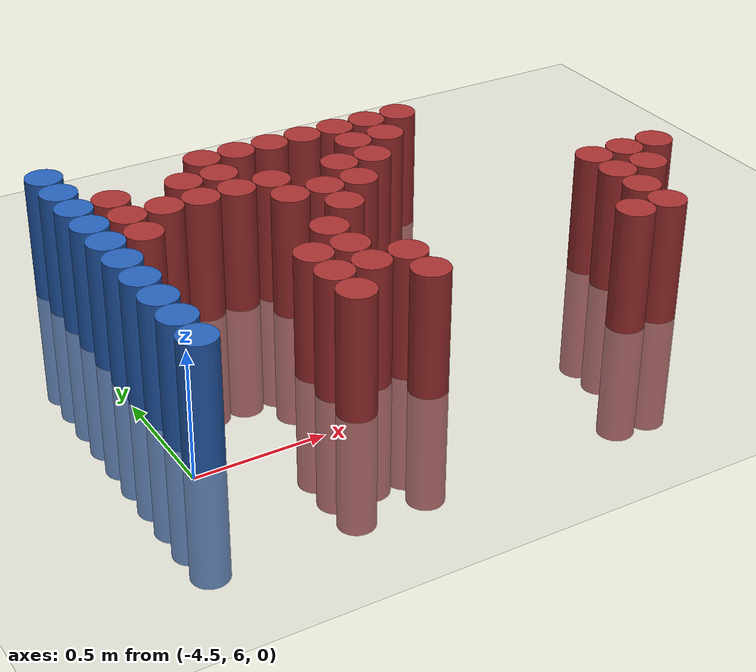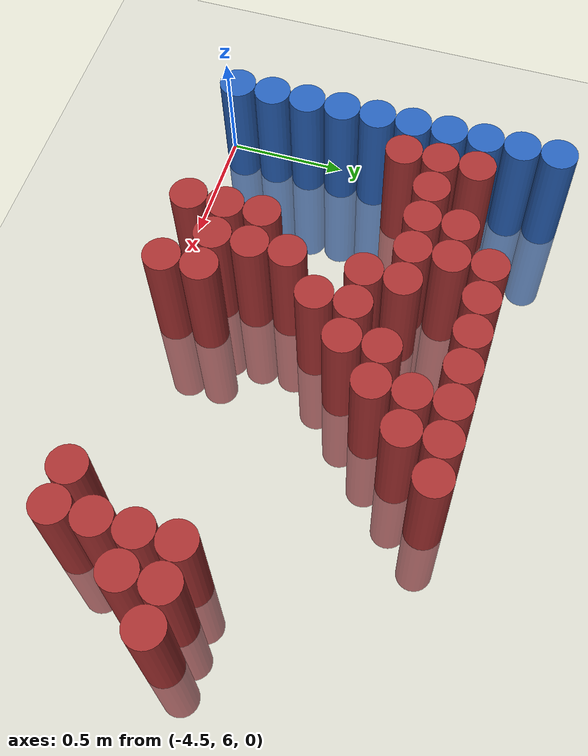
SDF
<sdf version="1.6">
 <world name="default">
  <model name="ground_plane">
   <static>1</static>
   <link name="link">
    <collision name="collision">
     <geometry><plane><normal>0 0 1</normal><size>100 100</size></plane></geometry>
     <surface><friction><ode><mu>100</mu><mu2>50</mu2></ode></friction></surface>
    </collision>
    <visual name="visual">
     <cast_shadows>0</cast_shadows>
     <geometry><plane><normal>0 0 1</normal><size>100 100</size></plane></geometry>
     <material>
      <script><uri>file://media/materials/scripts/gazebo.material</uri><name>Gazebo/Grey</name></script>
     </material>
    </visual>
   </link>
  </model>
  <model name="unit_cylinder_102">
   <static>1</static>
   <pose>-4.425000 6.075000 0.000000 0.000000 0.000000 0.000000</pose>
   <link name="link">
    <inertial>
     <mass>1</mass>
     <inertia><ixx>0.145833</ixx><ixy>0</ixy><ixz>0</ixz><iyy>0.145833</iyy><iyz>0</iyz><izz>0.125</izz></inertia>
    </inertial>
    <collision name="collision">
     <geometry><cylinder><radius>0.075000</radius><length>1</length></cylinder></geometry>
    </collision>
    <visual name="visual">
     <geometry><cylinder><radius>0.075000</radius><length>1</length></cylinder></geometry>
     <material>
      <ambient>0.152000 0.379000 0.720000 1</ambient>
      <diffuse>0.152000 0.379000 0.720000 1</diffuse>
     </material>
     <material>
      <script><name>Gazebo/Grey</name><uri>file://media/materials/scripts/gazebo.material</uri></script>
     </material>
    </visual>
   </link>
  </model>
  <model name="unit_cylinder_103">
   <static>1</static>
   <pose>-4.425000 6.225000 0.000000 0.000000 0.000000 0.000000</pose>
   <link name="link">
    <inertial>
     <mass>1</mass>
     <inertia><ixx>0.145833</ixx><ixy>0</ixy><ixz>0</ixz><iyy>0.145833</iyy><iyz>0</iyz><izz>0.125</izz></inertia>
    </inertial>
    <collision name="collision">
     <geometry><cylinder><radius>0.075000</radius><length>1</length></cylinder></geometry>
    </collision>
    <visual name="visual">
     <geometry><cylinder><radius>0.075000</radius><length>1</length></cylinder></geometry>
     <material>
      <ambient>0.152000 0.379000 0.720000 1</ambient>
      <diffuse>0.152000 0.379000 0.720000 1</diffuse>
     </material>
     <material>
      <script><name>Gazebo/Grey</name><uri>file://media/materials/scripts/gazebo.material</uri></script>
     </material>
    </visual>
   </link>
  </model>
  <model name="unit_cylinder_104">
   <static>1</static>
   <pose>-4.425000 6.375000 0.000000 0.000000 0.000000 0.000000</pose>
   <link name="link">
    <inertial>
     <mass>1</mass>
     <inertia><ixx>0.145833</ixx><ixy>0</ixy><ixz>0</ixz><iyy>0.145833</iyy><iyz>0</iyz><izz>0.125</izz></inertia>
    </inertial>
    <collision name="collision">
     <geometry><cylinder><radius>0.075000</radius><length>1</length></cylinder></geometry>
    </collision>
    <visual name="visual">
     <geometry><cylinder><radius>0.075000</radius><length>1</length></cylinder></geometry>
     <material>
      <ambient>0.152000 0.379000 0.720000 1</ambient>
      <diffuse>0.152000 0.379000 0.720000 1</diffuse>
     </material>
     <material>
      <script><name>Gazebo/Grey</name><uri>file://media/materials/scripts/gazebo.material</uri></script>
     </material>
    </visual>
   </link>
  </model>
  <model name="unit_cylinder_105">
   <static>1</static>
   <pose>-4.425000 6.525000 0.000000 0.000000 0.000000 0.000000</pose>
   <link name="link">
    <inertial>
     <mass>1</mass>
     <inertia><ixx>0.145833</ixx><ixy>0</ixy><ixz>0</ixz><iyy>0.145833</iyy><iyz>0</iyz><izz>0.125</izz></inertia>
    </inertial>
    <collision name="collision">
     <geometry><cylinder><radius>0.075000</radius><length>1</length></cylinder></geometry>
    </collision>
    <visual name="visual">
     <geometry><cylinder><radius>0.075000</radius><length>1</length></cylinder></geometry>
     <material>
      <ambient>0.152000 0.379000 0.720000 1</ambient>
      <diffuse>0.152000 0.379000 0.720000 1</diffuse>
     </material>
     <material>
      <script><name>Gazebo/Grey</name><uri>file://media/materials/scripts/gazebo.material</uri></script>
     </material>
    </visual>
   </link>
  </model>
  <model name="unit_cylinder_106">
   <static>1</static>
   <pose>-4.425000 6.675000 0.000000 0.000000 0.000000 0.000000</pose>
   <link name="link">
    <inertial>
     <mass>1</mass>
     <inertia><ixx>0.145833</ixx><ixy>0</ixy><ixz>0</ixz><iyy>0.145833</iyy><iyz>0</iyz><izz>0.125</izz></inertia>
    </inertial>
    <collision name="collision">
     <geometry><cylinder><radius>0.075000</radius><length>1</length></cylinder></geometry>
    </collision>
    <visual name="visual">
     <geometry><cylinder><radius>0.075000</radius><length>1</length></cylinder></geometry>
     <material>
      <ambient>0.152000 0.379000 0.720000 1</ambient>
      <diffuse>0.152000 0.379000 0.720000 1</diffuse>
     </material>
     <material>
      <script><name>Gazebo/Grey</name><uri>file://media/materials/scripts/gazebo.material</uri></script>
     </material>
    </visual>
   </link>
  </model>
  <model name="unit_cylinder_107">
   <static>1</static>
   <pose>-4.425000 6.825000 0.000000 0.000000 0.000000 0.000000</pose>
   <link name="link">
    <inertial>
     <mass>1</mass>
     <inertia><ixx>0.145833</ixx><ixy>0</ixy><ixz>0</ixz><iyy>0.145833</iyy><iyz>0</iyz><izz>0.125</izz></inertia>
    </inertial>
    <collision name="collision">
     <geometry><cylinder><radius>0.075000</radius><length>1</length></cylinder></geometry>
    </collision>
    <visual name="visual">
     <geometry><cylinder><radius>0.075000</radius><length>1</length></cylinder></geometry>
     <material>
      <ambient>0.152000 0.379000 0.720000 1</ambient>
      <diffuse>0.152000 0.379000 0.720000 1</diffuse>
     </material>
     <material>
      <script><name>Gazebo/Grey</name><uri>file://media/materials/scripts/gazebo.material</uri></script>
     </material>
    </visual>
   </link>
  </model>
  <model name="unit_cylinder_108">
   <static>1</static>
   <pose>-4.425000 6.975000 0.000000 0.000000 0.000000 0.000000</pose>
   <link name="link">
    <inertial>
     <mass>1</mass>
     <inertia><ixx>0.145833</ixx><ixy>0</ixy><ixz>0</ixz><iyy>0.145833</iyy><iyz>0</iyz><izz>0.125</izz></inertia>
    </inertial>
    <collision name="collision">
     <geometry><cylinder><radius>0.075000</radius><length>1</length></cylinder></geometry>
    </collision>
    <visual name="visual">
     <geometry><cylinder><radius>0.075000</radius><length>1</length></cylinder></geometry>
     <material>
      <ambient>0.152000 0.379000 0.720000 1</ambient>
      <diffuse>0.152000 0.379000 0.720000 1</diffuse>
     </material>
     <material>
      <script><name>Gazebo/Grey</name><uri>file://media/materials/scripts/gazebo.material</uri></script>
     </material>
    </visual>
   </link>
  </model>
  <model name="unit_cylinder_109">
   <static>1</static>
   <pose>-4.425000 7.125000 0.000000 0.000000 0.000000 0.000000</pose>
   <link name="link">
    <inertial>
     <mass>1</mass>
     <inertia><ixx>0.145833</ixx><ixy>0</ixy><ixz>0</ixz><iyy>0.145833</iyy><iyz>0</iyz><izz>0.125</izz></inertia>
    </inertial>
    <collision name="collision">
     <geometry><cylinder><radius>0.075000</radius><length>1</length></cylinder></geometry>
    </collision>
    <visual name="visual">
     <geometry><cylinder><radius>0.075000</radius><length>1</length></cylinder></geometry>
     <material>
      <ambient>0.152000 0.379000 0.720000 1</ambient>
      <diffuse>0.152000 0.379000 0.720000 1</diffuse>
     </material>
     <material>
      <script><name>Gazebo/Grey</name><uri>file://media/materials/scripts/gazebo.material</uri></script>
     </material>
    </visual>
   </link>
  </model>
  <model name="unit_cylinder_110">
   <static>1</static>
   <pose>-4.425000 7.275000 0.000000 0.000000 0.000000 0.000000</pose>
   <link name="link">
    <inertial>
     <mass>1</mass>
     <inertia><ixx>0.145833</ixx><ixy>0</ixy><ixz>0</ixz><iyy>0.145833</iyy><iyz>0</iyz><izz>0.125</izz></inertia>
    </inertial>
    <collision name="collision">
     <geometry><cylinder><radius>0.075000</radius><length>1</length></cylinder></geometry>
    </collision>
    <visual name="visual">
     <geometry><cylinder><radius>0.075000</radius><length>1</length></cylinder></geometry>
     <material>
      <ambient>0.152000 0.379000 0.720000 1</ambient>
      <diffuse>0.152000 0.379000 0.720000 1</diffuse>
     </material>
     <material>
      <script><name>Gazebo/Grey</name><uri>file://media/materials/scripts/gazebo.material</uri></script>
     </material>
    </visual>
   </link>
  </model>
  <model name="unit_cylinder_111">
   <static>1</static>
   <pose>-4.425000 7.425000 0.000000 0.000000 0.000000 0.000000</pose>
   <link name="link">
    <inertial>
     <mass>1</mass>
     <inertia><ixx>0.145833</ixx><ixy>0</ixy><ixz>0</ixz><iyy>0.145833</iyy><iyz>0</iyz><izz>0.125</izz></inertia>
    </inertial>
    <collision name="collision">
     <geometry><cylinder><radius>0.075000</radius><length>1</length></cylinder></geometry>
    </collision>
    <visual name="visual">
     <geometry><cylinder><radius>0.075000</radius><length>1</length></cylinder></geometry>
     <material>
      <ambient>0.152000 0.379000 0.720000 1</ambient>
      <diffuse>0.152000 0.379000 0.720000 1</diffuse>
     </material>
     <material>
      <script><name>Gazebo/Grey</name><uri>file://media/materials/scripts/gazebo.material</uri></script>
     </material>
    </visual>
   </link>
  </model>
  <model name="unit_cylinder_129">
   <static>1</static>
   <pose>-4.275000 6.825000 0.000000 0.000000 0.000000 0.000000</pose>
   <link name="link">
    <inertial>
     <mass>1</mass>
     <inertia><ixx>0.145833</ixx><ixy>0</ixy><ixz>0</ixz><iyy>0.145833</iyy><iyz>0</iyz><izz>0.125</izz></inertia>
    </inertial>
    <collision name="collision">
     <geometry><cylinder><radius>0.075000</radius><length>1</length></cylinder></geometry>
    </collision>
    <visual name="visual">
     <geometry><cylinder><radius>0.075000</radius><length>1</length></cylinder></geometry>
     <material>
      <ambient>0.648000 0.192000 0.192000 1</ambient>
      <diffuse>0.648000 0.192000 0.192000 1</diffuse>
     </material>
     <material>
      <script><name>Gazebo/Grey</name><uri>file://media/materials/scripts/gazebo.material</uri></script>
     </material>
    </visual>
   </link>
  </model>
  <model name="unit_cylinder_130">
   <static>1</static>
   <pose>-4.275000 6.975000 0.000000 0.000000 0.000000 0.000000</pose>
   <link name="link">
    <inertial>
     <mass>1</mass>
     <inertia><ixx>0.145833</ixx><ixy>0</ixy><ixz>0</ixz><iyy>0.145833</iyy><iyz>0</iyz><izz>0.125</izz></inertia>
    </inertial>
    <collision name="collision">
     <geometry><cylinder><radius>0.075000</radius><length>1</length></cylinder></geometry>
    </collision>
    <visual name="visual">
     <geometry><cylinder><radius>0.075000</radius><length>1</length></cylinder></geometry>
     <material>
      <ambient>0.648000 0.192000 0.192000 1</ambient>
      <diffuse>0.648000 0.192000 0.192000 1</diffuse>
     </material>
     <material>
      <script><name>Gazebo/Grey</name><uri>file://media/materials/scripts/gazebo.material</uri></script>
     </material>
    </visual>
   </link>
  </model>
  <model name="unit_cylinder_131">
   <static>1</static>
   <pose>-4.275000 7.125000 0.000000 0.000000 0.000000 0.000000</pose>
   <link name="link">
    <inertial>
     <mass>1</mass>
     <inertia><ixx>0.145833</ixx><ixy>0</ixy><ixz>0</ixz><iyy>0.145833</iyy><iyz>0</iyz><izz>0.125</izz></inertia>
    </inertial>
    <collision name="collision">
     <geometry><cylinder><radius>0.075000</radius><length>1</length></cylinder></geometry>
    </collision>
    <visual name="visual">
     <geometry><cylinder><radius>0.075000</radius><length>1</length></cylinder></geometry>
     <material>
      <ambient>0.648000 0.192000 0.192000 1</ambient>
      <diffuse>0.648000 0.192000 0.192000 1</diffuse>
     </material>
     <material>
      <script><name>Gazebo/Grey</name><uri>file://media/materials/scripts/gazebo.material</uri></script>
     </material>
    </visual>
   </link>
  </model>
  <model name="unit_cylinder_140">
   <static>1</static>
   <pose>-4.125000 6.975000 0.000000 0.000000 0.000000 0.000000</pose>
   <link name="link">
    <inertial>
     <mass>1</mass>
     <inertia><ixx>0.145833</ixx><ixy>0</ixy><ixz>0</ixz><iyy>0.145833</iyy><iyz>0</iyz><izz>0.125</izz></inertia>
    </inertial>
    <collision name="collision">
     <geometry><cylinder><radius>0.075000</radius><length>1</length></cylinder></geometry>
    </collision>
    <visual name="visual">
     <geometry><cylinder><radius>0.075000</radius><length>1</length></cylinder></geometry>
     <material>
      <ambient>0.648000 0.192000 0.192000 1</ambient>
      <diffuse>0.648000 0.192000 0.192000 1</diffuse>
     </material>
     <material>
      <script><name>Gazebo/Grey</name><uri>file://media/materials/scripts/gazebo.material</uri></script>
     </material>
    </visual>
   </link>
  </model>
  <model name="unit_cylinder_144">
   <static>1</static>
   <pose>-3.975000 6.975000 0.000000 0.000000 0.000000 0.000000</pose>
   <link name="link">
    <inertial>
     <mass>1</mass>
     <inertia><ixx>0.145833</ixx><ixy>0</ixy><ixz>0</ixz><iyy>0.145833</iyy><iyz>0</iyz><izz>0.125</izz></inertia>
    </inertial>
    <collision name="collision">
     <geometry><cylinder><radius>0.075000</radius><length>1</length></cylinder></geometry>
    </collision>
    <visual name="visual">
     <geometry><cylinder><radius>0.075000</radius><length>1</length></cylinder></geometry>
     <material>
      <ambient>0.648000 0.192000 0.192000 1</ambient>
      <diffuse>0.648000 0.192000 0.192000 1</diffuse>
     </material>
     <material>
      <script><name>Gazebo/Grey</name><uri>file://media/materials/scripts/gazebo.material</uri></script>
     </material>
    </visual>
   </link>
  </model>
  <model name="unit_cylinder_145">
   <static>1</static>
   <pose>-3.975000 7.125000 0.000000 0.000000 0.000000 0.000000</pose>
   <link name="link">
    <inertial>
     <mass>1</mass>
     <inertia><ixx>0.145833</ixx><ixy>0</ixy><ixz>0</ixz><iyy>0.145833</iyy><iyz>0</iyz><izz>0.125</izz></inertia>
    </inertial>
    <collision name="collision">
     <geometry><cylinder><radius>0.075000</radius><length>1</length></cylinder></geometry>
    </collision>
    <visual name="visual">
     <geometry><cylinder><radius>0.075000</radius><length>1</length></cylinder></geometry>
     <material>
      <ambient>0.648000 0.192000 0.192000 1</ambient>
      <diffuse>0.648000 0.192000 0.192000 1</diffuse>
     </material>
     <material>
      <script><name>Gazebo/Grey</name><uri>file://media/materials/scripts/gazebo.material</uri></script>
     </material>
    </visual>
   </link>
  </model>
  <model name="unit_cylinder_149">
   <static>1</static>
   <pose>-3.825000 6.075000 0.000000 0.000000 0.000000 0.000000</pose>
   <link name="link">
    <inertial>
     <mass>1</mass>
     <inertia><ixx>0.145833</ixx><ixy>0</ixy><ixz>0</ixz><iyy>0.145833</iyy><iyz>0</iyz><izz>0.125</izz></inertia>
    </inertial>
    <collision name="collision">
     <geometry><cylinder><radius>0.075000</radius><length>1</length></cylinder></geometry>
    </collision>
    <visual name="visual">
     <geometry><cylinder><radius>0.075000</radius><length>1</length></cylinder></geometry>
     <material>
      <ambient>0.648000 0.192000 0.192000 1</ambient>
      <diffuse>0.648000 0.192000 0.192000 1</diffuse>
     </material>
     <material>
      <script><name>Gazebo/Grey</name><uri>file://media/materials/scripts/gazebo.material</uri></script>
     </material>
    </visual>
   </link>
  </model>
  <model name="unit_cylinder_150">
   <static>1</static>
   <pose>-3.825000 6.225000 0.000000 0.000000 0.000000 0.000000</pose>
   <link name="link">
    <inertial>
     <mass>1</mass>
     <inertia><ixx>0.145833</ixx><ixy>0</ixy><ixz>0</ixz><iyy>0.145833</iyy><iyz>0</iyz><izz>0.125</izz></inertia>
    </inertial>
    <collision name="collision">
     <geometry><cylinder><radius>0.075000</radius><length>1</length></cylinder></geometry>
    </collision>
    <visual name="visual">
     <geometry><cylinder><radius>0.075000</radius><length>1</length></cylinder></geometry>
     <material>
      <ambient>0.648000 0.192000 0.192000 1</ambient>
      <diffuse>0.648000 0.192000 0.192000 1</diffuse>
     </material>
     <material>
      <script><name>Gazebo/Grey</name><uri>file://media/materials/scripts/gazebo.material</uri></script>
     </material>
    </visual>
   </link>
  </model>
  <model name="unit_cylinder_151">
   <static>1</static>
   <pose>-3.825000 6.375000 0.000000 0.000000 0.000000 0.000000</pose>
   <link name="link">
    <inertial>
     <mass>1</mass>
     <inertia><ixx>0.145833</ixx><ixy>0</ixy><ixz>0</ixz><iyy>0.145833</iyy><iyz>0</iyz><izz>0.125</izz></inertia>
    </inertial>
    <collision name="collision">
     <geometry><cylinder><radius>0.075000</radius><length>1</length></cylinder></geometry>
    </collision>
    <visual name="visual">
     <geometry><cylinder><radius>0.075000</radius><length>1</length></cylinder></geometry>
     <material>
      <ambient>0.648000 0.192000 0.192000 1</ambient>
      <diffuse>0.648000 0.192000 0.192000 1</diffuse>
     </material>
     <material>
      <script><name>Gazebo/Grey</name><uri>file://media/materials/scripts/gazebo.material</uri></script>
     </material>
    </visual>
   </link>
  </model>
  <model name="unit_cylinder_152">
   <static>1</static>
   <pose>-3.825000 6.975000 0.000000 0.000000 0.000000 0.000000</pose>
   <link name="link">
    <inertial>
     <mass>1</mass>
     <inertia><ixx>0.145833</ixx><ixy>0</ixy><ixz>0</ixz><iyy>0.145833</iyy><iyz>0</iyz><izz>0.125</izz></inertia>
    </inertial>
    <collision name="collision">
     <geometry><cylinder><radius>0.075000</radius><length>1</length></cylinder></geometry>
    </collision>
    <visual name="visual">
     <geometry><cylinder><radius>0.075000</radius><length>1</length></cylinder></geometry>
     <material>
      <ambient>0.648000 0.192000 0.192000 1</ambient>
      <diffuse>0.648000 0.192000 0.192000 1</diffuse>
     </material>
     <material>
      <script><name>Gazebo/Grey</name><uri>file://media/materials/scripts/gazebo.material</uri></script>
     </material>
    </visual>
   </link>
  </model>
  <model name="unit_cylinder_153">
   <static>1</static>
   <pose>-3.825000 7.125000 0.000000 0.000000 0.000000 0.000000</pose>
   <link name="link">
    <inertial>
     <mass>1</mass>
     <inertia><ixx>0.145833</ixx><ixy>0</ixy><ixz>0</ixz><iyy>0.145833</iyy><iyz>0</iyz><izz>0.125</izz></inertia>
    </inertial>
    <collision name="collision">
     <geometry><cylinder><radius>0.075000</radius><length>1</length></cylinder></geometry>
    </collision>
    <visual name="visual">
     <geometry><cylinder><radius>0.075000</radius><length>1</length></cylinder></geometry>
     <material>
      <ambient>0.648000 0.192000 0.192000 1</ambient>
      <diffuse>0.648000 0.192000 0.192000 1</diffuse>
     </material>
     <material>
      <script><name>Gazebo/Grey</name><uri>file://media/materials/scripts/gazebo.material</uri></script>
     </material>
    </visual>
   </link>
  </model>
  <model name="unit_cylinder_154">
   <static>1</static>
   <pose>-3.825000 7.275000 0.000000 0.000000 0.000000 0.000000</pose>
   <link name="link">
    <inertial>
     <mass>1</mass>
     <inertia><ixx>0.145833</ixx><ixy>0</ixy><ixz>0</ixz><iyy>0.145833</iyy><iyz>0</iyz><izz>0.125</izz></inertia>
    </inertial>
    <collision name="collision">
     <geometry><cylinder><radius>0.075000</radius><length>1</length></cylinder></geometry>
    </collision>
    <visual name="visual">
     <geometry><cylinder><radius>0.075000</radius><length>1</length></cylinder></geometry>
     <material>
      <ambient>0.648000 0.192000 0.192000 1</ambient>
      <diffuse>0.648000 0.192000 0.192000 1</diffuse>
     </material>
     <material>
      <script><name>Gazebo/Grey</name><uri>file://media/materials/scripts/gazebo.material</uri></script>
     </material>
    </visual>
   </link>
  </model>
  <model name="unit_cylinder_156">
   <static>1</static>
   <pose>-3.675000 6.225000 0.000000 0.000000 0.000000 0.000000</pose>
   <link name="link">
    <inertial>
     <mass>1</mass>
     <inertia><ixx>0.145833</ixx><ixy>0</ixy><ixz>0</ixz><iyy>0.145833</iyy><iyz>0</iyz><izz>0.125</izz></inertia>
    </inertial>
    <collision name="collision">
     <geometry><cylinder><radius>0.075000</radius><length>1</length></cylinder></geometry>
    </collision>
    <visual name="visual">
     <geometry><cylinder><radius>0.075000</radius><length>1</length></cylinder></geometry>
     <material>
      <ambient>0.648000 0.192000 0.192000 1</ambient>
      <diffuse>0.648000 0.192000 0.192000 1</diffuse>
     </material>
     <material>
      <script><name>Gazebo/Grey</name><uri>file://media/materials/scripts/gazebo.material</uri></script>
     </material>
    </visual>
   </link>
  </model>
  <model name="unit_cylinder_157">
   <static>1</static>
   <pose>-3.675000 6.375000 0.000000 0.000000 0.000000 0.000000</pose>
   <link name="link">
    <inertial>
     <mass>1</mass>
     <inertia><ixx>0.145833</ixx><ixy>0</ixy><ixz>0</ixz><iyy>0.145833</iyy><iyz>0</iyz><izz>0.125</izz></inertia>
    </inertial>
    <collision name="collision">
     <geometry><cylinder><radius>0.075000</radius><length>1</length></cylinder></geometry>
    </collision>
    <visual name="visual">
     <geometry><cylinder><radius>0.075000</radius><length>1</length></cylinder></geometry>
     <material>
      <ambient>0.648000 0.192000 0.192000 1</ambient>
      <diffuse>0.648000 0.192000 0.192000 1</diffuse>
     </material>
     <material>
      <script><name>Gazebo/Grey</name><uri>file://media/materials/scripts/gazebo.material</uri></script>
     </material>
    </visual>
   </link>
  </model>
  <model name="unit_cylinder_158">
   <static>1</static>
   <pose>-3.675000 6.525000 0.000000 0.000000 0.000000 0.000000</pose>
   <link name="link">
    <inertial>
     <mass>1</mass>
     <inertia><ixx>0.145833</ixx><ixy>0</ixy><ixz>0</ixz><iyy>0.145833</iyy><iyz>0</iyz><izz>0.125</izz></inertia>
    </inertial>
    <collision name="collision">
     <geometry><cylinder><radius>0.075000</radius><length>1</length></cylinder></geometry>
    </collision>
    <visual name="visual">
     <geometry><cylinder><radius>0.075000</radius><length>1</length></cylinder></geometry>
     <material>
      <ambient>0.648000 0.192000 0.192000 1</ambient>
      <diffuse>0.648000 0.192000 0.192000 1</diffuse>
     </material>
     <material>
      <script><name>Gazebo/Grey</name><uri>file://media/materials/scripts/gazebo.material</uri></script>
     </material>
    </visual>
   </link>
  </model>
  <model name="unit_cylinder_159">
   <static>1</static>
   <pose>-3.675000 6.825000 0.000000 0.000000 0.000000 0.000000</pose>
   <link name="link">
    <inertial>
     <mass>1</mass>
     <inertia><ixx>0.145833</ixx><ixy>0</ixy><ixz>0</ixz><iyy>0.145833</iyy><iyz>0</iyz><izz>0.125</izz></inertia>
    </inertial>
    <collision name="collision">
     <geometry><cylinder><radius>0.075000</radius><length>1</length></cylinder></geometry>
    </collision>
    <visual name="visual">
     <geometry><cylinder><radius>0.075000</radius><length>1</length></cylinder></geometry>
     <material>
      <ambient>0.648000 0.192000 0.192000 1</ambient>
      <diffuse>0.648000 0.192000 0.192000 1</diffuse>
     </material>
     <material>
      <script><name>Gazebo/Grey</name><uri>file://media/materials/scripts/gazebo.material</uri></script>
     </material>
    </visual>
   </link>
  </model>
  <model name="unit_cylinder_160">
   <static>1</static>
   <pose>-3.675000 6.975000 0.000000 0.000000 0.000000 0.000000</pose>
   <link name="link">
    <inertial>
     <mass>1</mass>
     <inertia><ixx>0.145833</ixx><ixy>0</ixy><ixz>0</ixz><iyy>0.145833</iyy><iyz>0</iyz><izz>0.125</izz></inertia>
    </inertial>
    <collision name="collision">
     <geometry><cylinder><radius>0.075000</radius><length>1</length></cylinder></geometry>
    </collision>
    <visual name="visual">
     <geometry><cylinder><radius>0.075000</radius><length>1</length></cylinder></geometry>
     <material>
      <ambient>0.648000 0.192000 0.192000 1</ambient>
      <diffuse>0.648000 0.192000 0.192000 1</diffuse>
     </material>
     <material>
      <script><name>Gazebo/Grey</name><uri>file://media/materials/scripts/gazebo.material</uri></script>
     </material>
    </visual>
   </link>
  </model>
  <model name="unit_cylinder_161">
   <static>1</static>
   <pose>-3.675000 7.275000 0.000000 0.000000 0.000000 0.000000</pose>
   <link name="link">
    <inertial>
     <mass>1</mass>
     <inertia><ixx>0.145833</ixx><ixy>0</ixy><ixz>0</ixz><iyy>0.145833</iyy><iyz>0</iyz><izz>0.125</izz></inertia>
    </inertial>
    <collision name="collision">
     <geometry><cylinder><radius>0.075000</radius><length>1</length></cylinder></geometry>
    </collision>
    <visual name="visual">
     <geometry><cylinder><radius>0.075000</radius><length>1</length></cylinder></geometry>
     <material>
      <ambient>0.648000 0.192000 0.192000 1</ambient>
      <diffuse>0.648000 0.192000 0.192000 1</diffuse>
     </material>
     <material>
      <script><name>Gazebo/Grey</name><uri>file://media/materials/scripts/gazebo.material</uri></script>
     </material>
    </visual>
   </link>
  </model>
  <model name="unit_cylinder_165">
   <static>1</static>
   <pose>-3.525000 6.075000 0.000000 0.000000 0.000000 0.000000</pose>
   <link name="link">
    <inertial>
     <mass>1</mass>
     <inertia><ixx>0.145833</ixx><ixy>0</ixy><ixz>0</ixz><iyy>0.145833</iyy><iyz>0</iyz><izz>0.125</izz></inertia>
    </inertial>
    <collision name="collision">
     <geometry><cylinder><radius>0.075000</radius><length>1</length></cylinder></geometry>
    </collision>
    <visual name="visual">
     <geometry><cylinder><radius>0.075000</radius><length>1</length></cylinder></geometry>
     <material>
      <ambient>0.648000 0.192000 0.192000 1</ambient>
      <diffuse>0.648000 0.192000 0.192000 1</diffuse>
     </material>
     <material>
      <script><name>Gazebo/Grey</name><uri>file://media/materials/scripts/gazebo.material</uri></script>
     </material>
    </visual>
   </link>
  </model>
  <model name="unit_cylinder_166">
   <static>1</static>
   <pose>-3.525000 6.225000 0.000000 0.000000 0.000000 0.000000</pose>
   <link name="link">
    <inertial>
     <mass>1</mass>
     <inertia><ixx>0.145833</ixx><ixy>0</ixy><ixz>0</ixz><iyy>0.145833</iyy><iyz>0</iyz><izz>0.125</izz></inertia>
    </inertial>
    <collision name="collision">
     <geometry><cylinder><radius>0.075000</radius><length>1</length></cylinder></geometry>
    </collision>
    <visual name="visual">
     <geometry><cylinder><radius>0.075000</radius><length>1</length></cylinder></geometry>
     <material>
      <ambient>0.648000 0.192000 0.192000 1</ambient>
      <diffuse>0.648000 0.192000 0.192000 1</diffuse>
     </material>
     <material>
      <script><name>Gazebo/Grey</name><uri>file://media/materials/scripts/gazebo.material</uri></script>
     </material>
    </visual>
   </link>
  </model>
  <model name="unit_cylinder_167">
   <static>1</static>
   <pose>-3.525000 6.675000 0.000000 0.000000 0.000000 0.000000</pose>
   <link name="link">
    <inertial>
     <mass>1</mass>
     <inertia><ixx>0.145833</ixx><ixy>0</ixy><ixz>0</ixz><iyy>0.145833</iyy><iyz>0</iyz><izz>0.125</izz></inertia>
    </inertial>
    <collision name="collision">
     <geometry><cylinder><radius>0.075000</radius><length>1</length></cylinder></geometry>
    </collision>
    <visual name="visual">
     <geometry><cylinder><radius>0.075000</radius><length>1</length></cylinder></geometry>
     <material>
      <ambient>0.648000 0.192000 0.192000 1</ambient>
      <diffuse>0.648000 0.192000 0.192000 1</diffuse>
     </material>
     <material>
      <script><name>Gazebo/Grey</name><uri>file://media/materials/scripts/gazebo.material</uri></script>
     </material>
    </visual>
   </link>
  </model>
  <model name="unit_cylinder_168">
   <static>1</static>
   <pose>-3.525000 6.825000 0.000000 0.000000 0.000000 0.000000</pose>
   <link name="link">
    <inertial>
     <mass>1</mass>
     <inertia><ixx>0.145833</ixx><ixy>0</ixy><ixz>0</ixz><iyy>0.145833</iyy><iyz>0</iyz><izz>0.125</izz></inertia>
    </inertial>
    <collision name="collision">
     <geometry><cylinder><radius>0.075000</radius><length>1</length></cylinder></geometry>
    </collision>
    <visual name="visual">
     <geometry><cylinder><radius>0.075000</radius><length>1</length></cylinder></geometry>
     <material>
      <ambient>0.648000 0.192000 0.192000 1</ambient>
      <diffuse>0.648000 0.192000 0.192000 1</diffuse>
     </material>
     <material>
      <script><name>Gazebo/Grey</name><uri>file://media/materials/scripts/gazebo.material</uri></script>
     </material>
    </visual>
   </link>
  </model>
  <model name="unit_cylinder_169">
   <static>1</static>
   <pose>-3.525000 7.275000 0.000000 0.000000 0.000000 0.000000</pose>
   <link name="link">
    <inertial>
     <mass>1</mass>
     <inertia><ixx>0.145833</ixx><ixy>0</ixy><ixz>0</ixz><iyy>0.145833</iyy><iyz>0</iyz><izz>0.125</izz></inertia>
    </inertial>
    <collision name="collision">
     <geometry><cylinder><radius>0.075000</radius><length>1</length></cylinder></geometry>
    </collision>
    <visual name="visual">
     <geometry><cylinder><radius>0.075000</radius><length>1</length></cylinder></geometry>
     <material>
      <ambient>0.648000 0.192000 0.192000 1</ambient>
      <diffuse>0.648000 0.192000 0.192000 1</diffuse>
     </material>
     <material>
      <script><name>Gazebo/Grey</name><uri>file://media/materials/scripts/gazebo.material</uri></script>
     </material>
    </visual>
   </link>
  </model>
  <model name="unit_cylinder_173">
   <static>1</static>
   <pose>-3.375000 6.825000 0.000000 0.000000 0.000000 0.000000</pose>
   <link name="link">
    <inertial>
     <mass>1</mass>
     <inertia><ixx>0.145833</ixx><ixy>0</ixy><ixz>0</ixz><iyy>0.145833</iyy><iyz>0</iyz><izz>0.125</izz></inertia>
    </inertial>
    <collision name="collision">
     <geometry><cylinder><radius>0.075000</radius><length>1</length></cylinder></geometry>
    </collision>
    <visual name="visual">
     <geometry><cylinder><radius>0.075000</radius><length>1</length></cylinder></geometry>
     <material>
      <ambient>0.648000 0.192000 0.192000 1</ambient>
      <diffuse>0.648000 0.192000 0.192000 1</diffuse>
     </material>
     <material>
      <script><name>Gazebo/Grey</name><uri>file://media/materials/scripts/gazebo.material</uri></script>
     </material>
    </visual>
   </link>
  </model>
  <model name="unit_cylinder_174">
   <static>1</static>
   <pose>-3.375000 6.975000 0.000000 0.000000 0.000000 0.000000</pose>
   <link name="link">
    <inertial>
     <mass>1</mass>
     <inertia><ixx>0.145833</ixx><ixy>0</ixy><ixz>0</ixz><iyy>0.145833</iyy><iyz>0</iyz><izz>0.125</izz></inertia>
    </inertial>
    <collision name="collision">
     <geometry><cylinder><radius>0.075000</radius><length>1</length></cylinder></geometry>
    </collision>
    <visual name="visual">
     <geometry><cylinder><radius>0.075000</radius><length>1</length></cylinder></geometry>
     <material>
      <ambient>0.648000 0.192000 0.192000 1</ambient>
      <diffuse>0.648000 0.192000 0.192000 1</diffuse>
     </material>
     <material>
      <script><name>Gazebo/Grey</name><uri>file://media/materials/scripts/gazebo.material</uri></script>
     </material>
    </visual>
   </link>
  </model>
  <model name="unit_cylinder_175">
   <static>1</static>
   <pose>-3.375000 7.275000 0.000000 0.000000 0.000000 0.000000</pose>
   <link name="link">
    <inertial>
     <mass>1</mass>
     <inertia><ixx>0.145833</ixx><ixy>0</ixy><ixz>0</ixz><iyy>0.145833</iyy><iyz>0</iyz><izz>0.125</izz></inertia>
    </inertial>
    <collision name="collision">
     <geometry><cylinder><radius>0.075000</radius><length>1</length></cylinder></geometry>
    </collision>
    <visual name="visual">
     <geometry><cylinder><radius>0.075000</radius><length>1</length></cylinder></geometry>
     <material>
      <ambient>0.648000 0.192000 0.192000 1</ambient>
      <diffuse>0.648000 0.192000 0.192000 1</diffuse>
     </material>
     <material>
      <script><name>Gazebo/Grey</name><uri>file://media/materials/scripts/gazebo.material</uri></script>
     </material>
    </visual>
   </link>
  </model>
  <model name="unit_cylinder_178">
   <static>1</static>
   <pose>-3.225000 6.975000 0.000000 0.000000 0.000000 0.000000</pose>
   <link name="link">
    <inertial>
     <mass>1</mass>
     <inertia><ixx>0.145833</ixx><ixy>0</ixy><ixz>0</ixz><iyy>0.145833</iyy><iyz>0</iyz><izz>0.125</izz></inertia>
    </inertial>
    <collision name="collision">
     <geometry><cylinder><radius>0.075000</radius><length>1</length></cylinder></geometry>
    </collision>
    <visual name="visual">
     <geometry><cylinder><radius>0.075000</radius><length>1</length></cylinder></geometry>
     <material>
      <ambient>0.648000 0.192000 0.192000 1</ambient>
      <diffuse>0.648000 0.192000 0.192000 1</diffuse>
     </material>
     <material>
      <script><name>Gazebo/Grey</name><uri>file://media/materials/scripts/gazebo.material</uri></script>
     </material>
    </visual>
   </link>
  </model>
  <model name="unit_cylinder_179">
   <static>1</static>
   <pose>-3.225000 7.125000 0.000000 0.000000 0.000000 0.000000</pose>
   <link name="link">
    <inertial>
     <mass>1</mass>
     <inertia><ixx>0.145833</ixx><ixy>0</ixy><ixz>0</ixz><iyy>0.145833</iyy><iyz>0</iyz><izz>0.125</izz></inertia>
    </inertial>
    <collision name="collision">
     <geometry><cylinder><radius>0.075000</radius><length>1</length></cylinder></geometry>
    </collision>
    <visual name="visual">
     <geometry><cylinder><radius>0.075000</radius><length>1</length></cylinder></geometry>
     <material>
      <ambient>0.648000 0.192000 0.192000 1</ambient>
      <diffuse>0.648000 0.192000 0.192000 1</diffuse>
     </material>
     <material>
      <script><name>Gazebo/Grey</name><uri>file://media/materials/scripts/gazebo.material</uri></script>
     </material>
    </visual>
   </link>
  </model>
  <model name="unit_cylinder_180">
   <static>1</static>
   <pose>-3.225000 7.275000 0.000000 0.000000 0.000000 0.000000</pose>
   <link name="link">
    <inertial>
     <mass>1</mass>
     <inertia><ixx>0.145833</ixx><ixy>0</ixy><ixz>0</ixz><iyy>0.145833</iyy><iyz>0</iyz><izz>0.125</izz></inertia>
    </inertial>
    <collision name="collision">
     <geometry><cylinder><radius>0.075000</radius><length>1</length></cylinder></geometry>
    </collision>
    <visual name="visual">
     <geometry><cylinder><radius>0.075000</radius><length>1</length></cylinder></geometry>
     <material>
      <ambient>0.648000 0.192000 0.192000 1</ambient>
      <diffuse>0.648000 0.192000 0.192000 1</diffuse>
     </material>
     <material>
      <script><name>Gazebo/Grey</name><uri>file://media/materials/scripts/gazebo.material</uri></script>
     </material>
    </visual>
   </link>
  </model>
  <model name="unit_cylinder_186">
   <static>1</static>
   <pose>-3.075000 7.125000 0.000000 0.000000 0.000000 0.000000</pose>
   <link name="link">
    <inertial>
     <mass>1</mass>
     <inertia><ixx>0.145833</ixx><ixy>0</ixy><ixz>0</ixz><iyy>0.145833</iyy><iyz>0</iyz><izz>0.125</izz></inertia>
    </inertial>
    <collision name="collision">
     <geometry><cylinder><radius>0.075000</radius><length>1</length></cylinder></geometry>
    </collision>
    <visual name="visual">
     <geometry><cylinder><radius>0.075000</radius><length>1</length></cylinder></geometry>
     <material>
      <ambient>0.648000 0.192000 0.192000 1</ambient>
      <diffuse>0.648000 0.192000 0.192000 1</diffuse>
     </material>
     <material>
      <script><name>Gazebo/Grey</name><uri>file://media/materials/scripts/gazebo.material</uri></script>
     </material>
    </visual>
   </link>
  </model>
  <model name="unit_cylinder_187">
   <static>1</static>
   <pose>-3.075000 7.275000 0.000000 0.000000 0.000000 0.000000</pose>
   <link name="link">
    <inertial>
     <mass>1</mass>
     <inertia><ixx>0.145833</ixx><ixy>0</ixy><ixz>0</ixz><iyy>0.145833</iyy><iyz>0</iyz><izz>0.125</izz></inertia>
    </inertial>
    <collision name="collision">
     <geometry><cylinder><radius>0.075000</radius><length>1</length></cylinder></geometry>
    </collision>
    <visual name="visual">
     <geometry><cylinder><radius>0.075000</radius><length>1</length></cylinder></geometry>
     <material>
      <ambient>0.648000 0.192000 0.192000 1</ambient>
      <diffuse>0.648000 0.192000 0.192000 1</diffuse>
     </material>
     <material>
      <script><name>Gazebo/Grey</name><uri>file://media/materials/scripts/gazebo.material</uri></script>
     </material>
    </visual>
   </link>
  </model>
  <model name="unit_cylinder_196">
   <static>1</static>
   <pose>-2.925000 7.275000 0.000000 0.000000 0.000000 0.000000</pose>
   <link name="link">
    <inertial>
     <mass>1</mass>
     <inertia><ixx>0.145833</ixx><ixy>0</ixy><ixz>0</ixz><iyy>0.145833</iyy><iyz>0</iyz><izz>0.125</izz></inertia>
    </inertial>
    <collision name="collision">
     <geometry><cylinder><radius>0.075000</radius><length>1</length></cylinder></geometry>
    </collision>
    <visual name="visual">
     <geometry><cylinder><radius>0.075000</radius><length>1</length></cylinder></geometry>
     <material>
      <ambient>0.648000 0.192000 0.192000 1</ambient>
      <diffuse>0.648000 0.192000 0.192000 1</diffuse>
     </material>
     <material>
      <script><name>Gazebo/Grey</name><uri>file://media/materials/scripts/gazebo.material</uri></script>
     </material>
    </visual>
   </link>
  </model>
  <model name="unit_cylinder_213">
   <static>1</static>
   <pose>-2.625000 6.075000 0.000000 0.000000 0.000000 0.000000</pose>
   <link name="link">
    <inertial>
     <mass>1</mass>
     <inertia><ixx>0.145833</ixx><ixy>0</ixy><ixz>0</ixz><iyy>0.145833</iyy><iyz>0</iyz><izz>0.125</izz></inertia>
    </inertial>
    <collision name="collision">
     <geometry><cylinder><radius>0.075000</radius><length>1</length></cylinder></geometry>
    </collision>
    <visual name="visual">
     <geometry><cylinder><radius>0.075000</radius><length>1</length></cylinder></geometry>
     <material>
      <ambient>0.648000 0.192000 0.192000 1</ambient>
      <diffuse>0.648000 0.192000 0.192000 1</diffuse>
     </material>
     <material>
      <script><name>Gazebo/Grey</name><uri>file://media/materials/scripts/gazebo.material</uri></script>
     </material>
    </visual>
   </link>
  </model>
  <model name="unit_cylinder_215">
   <static>1</static>
   <pose>-2.475000 6.075000 0.000000 0.000000 0.000000 0.000000</pose>
   <link name="link">
    <inertial>
     <mass>1</mass>
     <inertia><ixx>0.145833</ixx><ixy>0</ixy><ixz>0</ixz><iyy>0.145833</iyy><iyz>0</iyz><izz>0.125</izz></inertia>
    </inertial>
    <collision name="collision">
     <geometry><cylinder><radius>0.075000</radius><length>1</length></cylinder></geometry>
    </collision>
    <visual name="visual">
     <geometry><cylinder><radius>0.075000</radius><length>1</length></cylinder></geometry>
     <material>
      <ambient>0.648000 0.192000 0.192000 1</ambient>
      <diffuse>0.648000 0.192000 0.192000 1</diffuse>
     </material>
     <material>
      <script><name>Gazebo/Grey</name><uri>file://media/materials/scripts/gazebo.material</uri></script>
     </material>
    </visual>
   </link>
  </model>
  <model name="unit_cylinder_216">
   <static>1</static>
   <pose>-2.475000 6.225000 0.000000 0.000000 0.000000 0.000000</pose>
   <link name="link">
    <inertial>
     <mass>1</mass>
     <inertia><ixx>0.145833</ixx><ixy>0</ixy><ixz>0</ixz><iyy>0.145833</iyy><iyz>0</iyz><izz>0.125</izz></inertia>
    </inertial>
    <collision name="collision">
     <geometry><cylinder><radius>0.075000</radius><length>1</length></cylinder></geometry>
    </collision>
    <visual name="visual">
     <geometry><cylinder><radius>0.075000</radius><length>1</length></cylinder></geometry>
     <material>
      <ambient>0.648000 0.192000 0.192000 1</ambient>
      <diffuse>0.648000 0.192000 0.192000 1</diffuse>
     </material>
     <material>
      <script><name>Gazebo/Grey</name><uri>file://media/materials/scripts/gazebo.material</uri></script>
     </material>
    </visual>
   </link>
  </model>
  <model name="unit_cylinder_217">
   <static>1</static>
   <pose>-2.475000 6.375000 0.000000 0.000000 0.000000 0.000000</pose>
   <link name="link">
    <inertial>
     <mass>1</mass>
     <inertia><ixx>0.145833</ixx><ixy>0</ixy><ixz>0</ixz><iyy>0.145833</iyy><iyz>0</iyz><izz>0.125</izz></inertia>
    </inertial>
    <collision name="collision">
     <geometry><cylinder><radius>0.075000</radius><length>1</length></cylinder></geometry>
    </collision>
    <visual name="visual">
     <geometry><cylinder><radius>0.075000</radius><length>1</length></cylinder></geometry>
     <material>
      <ambient>0.648000 0.192000 0.192000 1</ambient>
      <diffuse>0.648000 0.192000 0.192000 1</diffuse>
     </material>
     <material>
      <script><name>Gazebo/Grey</name><uri>file://media/materials/scripts/gazebo.material</uri></script>
     </material>
    </visual>
   </link>
  </model>
  <model name="unit_cylinder_218">
   <static>1</static>
   <pose>-2.475000 6.525000 0.000000 0.000000 0.000000 0.000000</pose>
   <link name="link">
    <inertial>
     <mass>1</mass>
     <inertia><ixx>0.145833</ixx><ixy>0</ixy><ixz>0</ixz><iyy>0.145833</iyy><iyz>0</iyz><izz>0.125</izz></inertia>
    </inertial>
    <collision name="collision">
     <geometry><cylinder><radius>0.075000</radius><length>1</length></cylinder></geometry>
    </collision>
    <visual name="visual">
     <geometry><cylinder><radius>0.075000</radius><length>1</length></cylinder></geometry>
     <material>
      <ambient>0.648000 0.192000 0.192000 1</ambient>
      <diffuse>0.648000 0.192000 0.192000 1</diffuse>
     </material>
     <material>
      <script><name>Gazebo/Grey</name><uri>file://media/materials/scripts/gazebo.material</uri></script>
     </material>
    </visual>
   </link>
  </model>
  <model name="unit_cylinder_221">
   <static>1</static>
   <pose>-2.325000 6.375000 0.000000 0.000000 0.000000 0.000000</pose>
   <link name="link">
    <inertial>
     <mass>1</mass>
     <inertia><ixx>0.145833</ixx><ixy>0</ixy><ixz>0</ixz><iyy>0.145833</iyy><iyz>0</iyz><izz>0.125</izz></inertia>
    </inertial>
    <collision name="collision">
     <geometry><cylinder><radius>0.075000</radius><length>1</length></cylinder></geometry>
    </collision>
    <visual name="visual">
     <geometry><cylinder><radius>0.075000</radius><length>1</length></cylinder></geometry>
     <material>
      <ambient>0.648000 0.192000 0.192000 1</ambient>
      <diffuse>0.648000 0.192000 0.192000 1</diffuse>
     </material>
     <material>
      <script><name>Gazebo/Grey</name><uri>file://media/materials/scripts/gazebo.material</uri></script>
     </material>
    </visual>
   </link>
  </model>
  <model name="unit_cylinder_222">
   <static>1</static>
   <pose>-2.325000 6.525000 0.000000 0.000000 0.000000 0.000000</pose>
   <link name="link">
    <inertial>
     <mass>1</mass>
     <inertia><ixx>0.145833</ixx><ixy>0</ixy><ixz>0</ixz><iyy>0.145833</iyy><iyz>0</iyz><izz>0.125</izz></inertia>
    </inertial>
    <collision name="collision">
     <geometry><cylinder><radius>0.075000</radius><length>1</length></cylinder></geometry>
    </collision>
    <visual name="visual">
     <geometry><cylinder><radius>0.075000</radius><length>1</length></cylinder></geometry>
     <material>
      <ambient>0.648000 0.192000 0.192000 1</ambient>
      <diffuse>0.648000 0.192000 0.192000 1</diffuse>
     </material>
     <material>
      <script><name>Gazebo/Grey</name><uri>file://media/materials/scripts/gazebo.material</uri></script>
     </material>
    </visual>
   </link>
  </model>
  <model name="unit_cylinder_225">
   <static>1</static>
   <pose>-2.175000 6.525000 0.000000 0.000000 0.000000 0.000000</pose>
   <link name="link">
    <inertial>
     <mass>1</mass>
     <inertia><ixx>0.145833</ixx><ixy>0</ixy><ixz>0</ixz><iyy>0.145833</iyy><iyz>0</iyz><izz>0.125</izz></inertia>
    </inertial>
    <collision name="collision">
     <geometry><cylinder><radius>0.075000</radius><length>1</length></cylinder></geometry>
    </collision>
    <visual name="visual">
     <geometry><cylinder><radius>0.075000</radius><length>1</length></cylinder></geometry>
     <material>
      <ambient>0.648000 0.192000 0.192000 1</ambient>
      <diffuse>0.648000 0.192000 0.192000 1</diffuse>
     </material>
     <material>
      <script><name>Gazebo/Grey</name><uri>file://media/materials/scripts/gazebo.material</uri></script>
     </material>
    </visual>
   </link>
  </model>
 </world>
</sdf>
